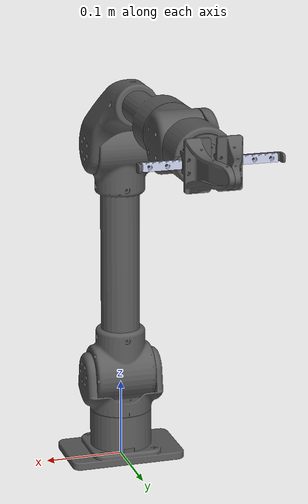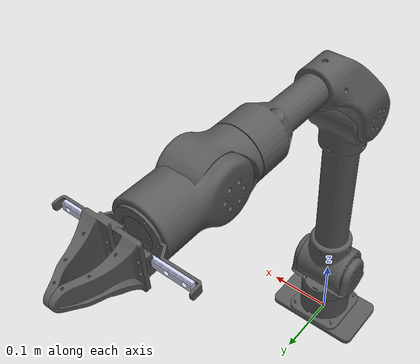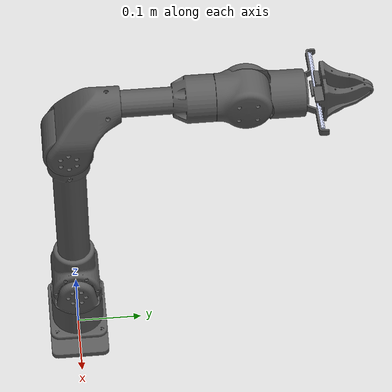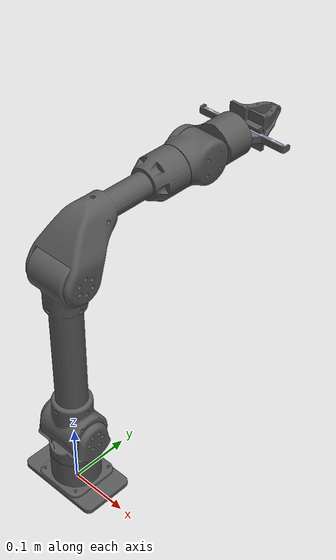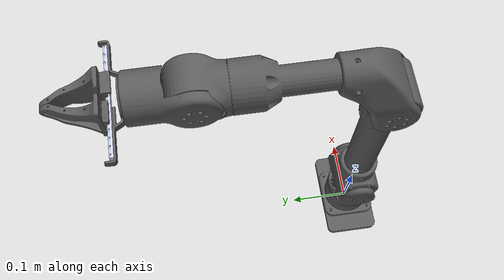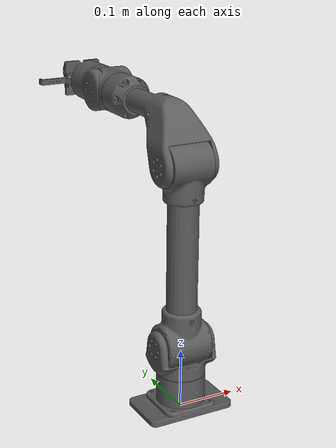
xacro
<?xml version="1.0"?>
<robot xmlns:xacro="http://www.ros.org/wiki/xacro" name="dm_arm">
    <xacro:arg name="initial_positions_file" default="initial_positions.yaml" />

    <!-- Import dm_arm urdf file -->
    <xacro:include filename="$(find dm_robotarm_description)/urdf/dm_arm.urdf" />

    <!-- Import control_xacro -->
    <xacro:include filename="dm_arm.ros2_control.xacro" />

    <xacro:dm_arm_ros2_control name="FakeSystem" initial_positions_file="$(arg initial_positions_file)"/>

</robot>

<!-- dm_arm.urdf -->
<robot
  name="dm_arm">
  <link
    name="base_link">
    <inertial>
      <origin
        xyz="-1.57023423559457E-12 -1.56840383671033E-05 0.023472452021331"
        rpy="0 0 0" />
      <mass
        value="0.338167493284204" />
      <inertia
        ixx="0.000200945530148255"
        ixy="1.85259066995073E-14"
        ixz="-8.30657057205135E-15"
        iyy="0.000359400809132696"
        iyz="-1.42870373675071E-07"
        izz="0.000486200613583201" />
    </inertial>
    <visual>
      <origin
        xyz="0 0 0"
        rpy="0 0 0" />
      <geometry>
        <mesh
          filename="package://dm_robotarm_description/meshes/base_link.STL" />
      </geometry>
      <material
        name="">
        <color
          rgba="0.35 0.35 0.35 1.0"/>
      </material>
    </visual>
    <collision>
      <origin
        xyz="0 0 0"
        rpy="0 0 0" />
      <geometry>
        <mesh
          filename="package://dm_robotarm_description/meshes/base_link.STL" />
      </geometry>
    </collision>
  </link>
  <link
    name="link1">
    <inertial>
      <origin
        xyz="-0.000212940177530321 0.0259332890162034 0.0001474662195669"
        rpy="0 0 0" />
      <mass
        value="0.0667887986008412" />
      <inertia
        ixx="0.000125234077048669"
        ixy="-3.11121570376547E-07"
        ixz="-3.17997192042187E-09"
        iyy="0.000119489444796782"
        iyz="1.56725691711702E-07"
        izz="6.28915499540971E-05" />
    </inertial>
    <visual>
      <origin
        xyz="0 0 0"
        rpy="0 0 0" />
      <geometry>
        <mesh
          filename="package://dm_robotarm_description/meshes/link1.STL" />
      </geometry>
      <material
        name="">
        <color
          rgba="0.35 0.35 0.35 1.0"/>
      </material>
    </visual>
    <collision>
      <origin
        xyz="0 0 0"
        rpy="0 0 0" />
      <geometry>
        <mesh
          filename="package://dm_robotarm_description/meshes/link1.STL" />
      </geometry>
    </collision>
  </link>
  <joint
    name="joint1"
    type="revolute">
    <origin
      xyz="0 0 0.065"
      rpy="1.5707963267949 0 1.5707963267949" />
    <parent
      link="base_link" />
    <child
      link="link1" />
    <axis
      xyz="0 1 0" />
    <limit
      lower="-3.14"
      upper="3.14"
      effort="100"
      velocity="1" />
  </joint>
  <link
    name="link2">
    <inertial>
      <origin
        xyz="0.00147899272347694 0.146546459524302 -1.08023667997198E-06"
        rpy="0 0 0" />
      <mass
        value="0.539321059323985" />
      <inertia
        ixx="0.000491048685269232"
        ixy="-2.95830365033329E-07"
        ixz="-2.78731195491179E-10"
        iyy="0.000298659886514536"
        iyz="3.92445970336601E-10"
        izz="0.000444111267570797" />
    </inertial>
    <visual>
      <origin
        xyz="0 0 0"
        rpy="0 0 0" />
      <geometry>
        <mesh
          filename="package://dm_robotarm_description/meshes/link2.STL" />
      </geometry>
      <material
        name="">
        <color
          rgba="0.35 0.35 0.35 1.0"/>
      </material>
    </visual>
    <collision>
      <origin
        xyz="0 0 0"
        rpy="0 0 0" />
      <geometry>
        <mesh
          filename="package://dm_robotarm_description/meshes/link2.STL" />
      </geometry>
    </collision>
  </link>
  <joint
    name="joint2"
    type="revolute">
    <origin
      xyz="0 0.05 0"
      rpy="0 1.5707963267949 0" />
    <parent
      link="link1" />
    <child
      link="link2" />
    <axis
      xyz="1 0 0" />
    <limit
      lower="-3.14"
      upper="3.14"
      effort="100"
      velocity="1" />
  </joint>
  <link
    name="link3">
    <inertial>
      <origin
        xyz="-0.14152652451896 -0.0591686531253975 -3.09109488360852E-06"
        rpy="0 0 0" />
      <mass
        value="0.235563772965438" />
      <inertia
        ixx="0.000228501056279194"
        ixy="-3.99167865986179E-05"
        ixz="-3.53890378548936E-08"
        iyy="0.000218674176854684"
        iyz="-1.47525502950319E-08"
        izz="0.000222919452237297" />
    </inertial>
    <visual>
      <origin
        xyz="0 0 0"
        rpy="0 0 0" />
      <geometry>
        <mesh
          filename="package://dm_robotarm_description/meshes/link3.STL" />
      </geometry>
      <material
        name="">
        <color
          rgba="0.35 0.35 0.35 1.0"/>
      </material>
    </visual>
    <collision>
      <origin
        xyz="0 0 0"
        rpy="0 0 0" />
      <geometry>
        <mesh
          filename="package://dm_robotarm_description/meshes/link3.STL" />
      </geometry>
    </collision>
  </link>
  <joint
    name="joint3"
    type="revolute">
    <origin
      xyz="0 0.3 0"
      rpy="3.14159263868863 1.5707963267949 0" />
    <parent
      link="link2" />
    <child
      link="link3" />
    <axis
      xyz="0 0 -1" />
    <limit
      lower="-3.14"
      upper="3.14"
      effort="100"
      velocity="1" />
  </joint>
  <link
    name="link4">
    <inertial>
      <origin
        xyz="0.00266728806786809 -6.69181386593332E-05 -0.00615048138378713"
        rpy="0 0 0" />
      <mass
        value="0.158552022648491" />
      <inertia
        ixx="8.39446087736356E-05"
        ixy="3.28047020663826E-07"
        ixz="-5.73773596180196E-06"
        iyy="9.07740812439015E-05"
        iyz="1.20633694488922E-07"
        izz="9.94674506352462E-05" />
    </inertial>
    <visual>
      <origin
        xyz="0 0 0"
        rpy="0 0 0" />
      <geometry>
        <mesh
          filename="package://dm_robotarm_description/meshes/link4.STL" />
      </geometry>
      <material
        name="">
        <color
          rgba="0.35 0.35 0.35 1.0"/>
      </material>
    </visual>
    <collision>
      <origin
        xyz="0 0 0"
        rpy="0 0 0" />
      <geometry>
        <mesh
          filename="package://dm_robotarm_description/meshes/link4.STL" />
      </geometry>
    </collision>
  </link>
  <joint
    name="joint4"
    type="revolute">
    <origin
      xyz="-0.262 -0.068 0"
      rpy="-3.1416 0 0" />
    <parent
      link="link3" />
    <child
      link="link4" />
    <axis
      xyz="-1 0 0" />
    <limit
      lower="-3.14"
      upper="3.14"
      effort="100"
      velocity="1" />
  </joint>
  <link
    name="link5">
    <inertial>
      <origin
        xyz="0.0541830148517481 1.97152979386495E-07 0.00151692162218413"
        rpy="0 0 0" />
      <mass
        value="0.151437126235803" />
      <inertia
        ixx="7.87612563948421E-05"
        ixy="2.73281512770541E-10"
        ixz="1.45923162907038E-05"
        iyy="9.68283714481666E-05"
        iyz="1.93884679289837E-09"
        izz="9.40848772884938E-05" />
    </inertial>
    <visual>
      <origin
        xyz="0 0 0"
        rpy="0 0 0" />
      <geometry>
        <mesh
          filename="package://dm_robotarm_description/meshes/link5.STL" />
      </geometry>
      <material
        name="">
        <color
          rgba="0.35 0.35 0.35 1.0"/>
      </material>
    </visual>
    <collision>
      <origin
        xyz="0 0 0"
        rpy="0 0 0" />
      <geometry>
        <mesh
          filename="package://dm_robotarm_description/meshes/link5.STL" />
      </geometry>
    </collision>
  </link>
  <joint
    name="joint5"
    type="revolute">
    <origin
      xyz="0 0 0"
      rpy="0 0 3.1416" />
    <parent
      link="link4" />
    <child
      link="link5" />
    <axis
      xyz="0 0 1" />
    <limit
      lower="-3.14"
      upper="3.14"
      effort="100"
      velocity="1" />
  </joint>
  <link
    name="link6">
    <inertial>
      <origin
        xyz="-2.04697370165263E-16 -5.55111512312578E-17 0.0068825396858736"
        rpy="0 0 0" />
      <mass
        value="0.00845926492912528" />
      <inertia
        ixx="1.62509172427773E-06"
        ixy="1.41386593409681E-21"
        ixz="1.85293458336862E-20"
        iyy="1.71582351205838E-05"
        iyz="-1.87110941696805E-22"
        izz="1.8059155011879E-05" />
    </inertial>
    <visual>
      <origin
        xyz="0 0 0"
        rpy="0 0 0" />
      <geometry>
        <mesh
          filename="package://dm_robotarm_description/meshes/link6.STL" />
      </geometry>
      <material
        name="">
        <color
          rgba="0.35 0.35 0.35 1.0"/>
      </material>
    </visual>
    <collision>
      <origin
        xyz="0 0 0"
        rpy="0 0 0" />
      <geometry>
        <mesh
          filename="package://dm_robotarm_description/meshes/link6.STL" />
      </geometry>
    </collision>
  </link>
  <joint
    name="joint6"
    type="revolute">
    <origin
      xyz="0.085 0 -0.002"
      rpy="1.5708 1.5708 1.5708" />
    <parent
      link="link5" />
    <child
      link="link6" />
    <axis
      xyz="0 0 1" />
    <limit
      lower="-3.14"
      upper="3.14"
      effort="100"
      velocity="1" />
  </joint>
  <link
    name="dm_hand">
    <inertial>
      <origin
        xyz="0.00449999999999989 -0.00293515245373277 0.0775000000000001"
        rpy="0 0 0" />
      <mass
        value="0.00622295597900878" />
      <inertia
        ixx="1.23805117068436E-05"
        ixy="4.98799644739373E-22"
        ixz="2.00939154648875E-20"
        iyy="1.24062735421518E-05"
        iyz="-9.37051623265858E-21"
        izz="5.80144303671102E-08" />
    </inertial>
    <visual>
      <origin
        xyz="0 0 0"
        rpy="0 0 0" />
      <geometry>
        <mesh
          filename="package://dm_robotarm_description/meshes/dm_hand.STL" />
      </geometry>
      <material
        name="">
        <color
          rgba="0.792156862745098 0.819607843137255 0.933333333333333 1" />
      </material>
    </visual>
    <collision>
      <origin
        xyz="0 0 0"
        rpy="0 0 0" />
      <geometry>
        <mesh
          filename="package://dm_robotarm_description/meshes/dm_hand.STL" />
      </geometry>
    </collision>
  </link>
  <joint
    name="dm_hand link"
    type="fixed">
    <origin
      xyz="-0.0775 -0.0045 0.02"
      rpy="1.5708 0 1.5708" />
    <parent
      link="link6" />
    <child
      link="dm_hand" />
    <axis
      xyz="0 0 0" />
  </joint>
  <link
    name="dm_right_hand">
    <inertial>
      <origin
        xyz="-0.00119029383065311 0.0305913532641161 -0.00208024272637757"
        rpy="0 0 0" />
      <mass
        value="0.0312949702479357" />
      <inertia
        ixx="1.47246749487528E-05"
        ixy="-4.87856110355504E-07"
        ixz="8.01690607041591E-08"
        iyy="7.83683592844715E-06"
        iyz="2.61469018587166E-06"
        izz="1.89905332554155E-05" />
    </inertial>
    <visual>
      <origin
        xyz="0 0 0"
        rpy="0 0 0" />
      <geometry>
        <mesh
          filename="package://dm_robotarm_description/meshes/dm_right_hand.STL" />
      </geometry>
      <material
        name="">
        <color
          rgba="0.35 0.35 0.35 1.0"/>
      </material>
    </visual>
    <collision>
      <origin
        xyz="0 0 0"
        rpy="0 0 0" />
      <geometry>
        <mesh
          filename="package://dm_robotarm_description/meshes/dm_right_hand.STL" />
      </geometry>
    </collision>
  </link>
  <joint
    name="dm_right_joint"
    type="prismatic">
    <origin
      xyz="0.0044 -0.0083 0.059139"
      rpy="-3.1416 0 3.1416" />
    <parent
      link="dm_hand" />
    <child
      link="dm_right_hand" />
    <axis
      xyz="0 0 1" />
    <limit
      lower="0"
      upper="0.045"
      effort="10"
      velocity="0.02" />
  </joint>
  <link
    name="dm_left_hand">
    <inertial>
      <origin
        xyz="-4.39967121274032E-06 0.0305930004271429 -0.00212550860716467"
        rpy="0 0 0" />
      <mass
        value="0.0312955877624117" />
      <inertia
        ixx="1.47265676806968E-05"
        ixy="-4.98326268404375E-07"
        ixz="6.70215885569211E-09"
        iyy="7.88570396871599E-06"
        iyz="2.61501243401216E-06"
        izz="1.90411691748568E-05" />
    </inertial>
    <visual>
      <origin
        xyz="0 0 0"
        rpy="0 0 0" />
      <geometry>
        <mesh
          filename="package://dm_robotarm_description/meshes/dm_left_hand.STL" />
      </geometry>
      <material
        name="">
        <color
          rgba="0.35 0.35 0.35 1.0"/>
      </material>
    </visual>
    <collision>
      <origin
        xyz="0 0 0"
        rpy="0 0 0" />
      <geometry>
        <mesh
          filename="package://dm_robotarm_description/meshes/dm_left_hand.STL" />
      </geometry>
    </collision>
  </link>
  <joint
    name="dm_left_joint"
    type="prismatic">
    <origin
      xyz="0.0044 -0.0083 0.095861"
      rpy="0 0 0" />
    <parent
      link="dm_hand" />
    <child
      link="dm_left_hand" />
    <axis
      xyz="0 0 -1" />
    <limit
      lower="-0.045"
      upper="0"
      effort="10"
      velocity="0.02" />
    <mimic
      joint="dm_right_joint"
      multiplier="-1"
      offset="0" />
  </joint>
</robot>
